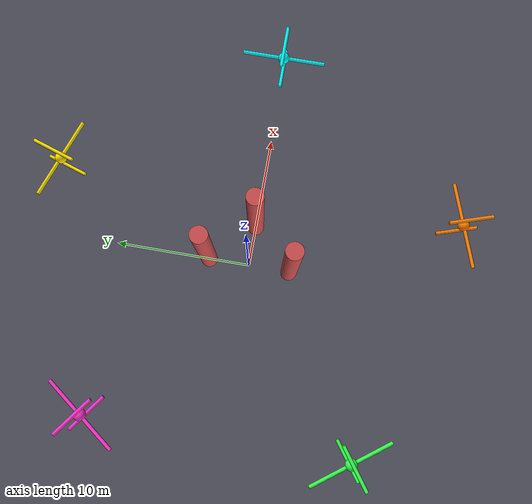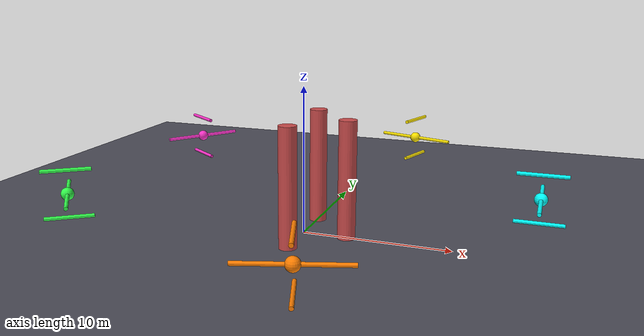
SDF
<sdf version="1.8">
 <world name="stress_swarm_orca_crossing">
  <physics name="1ms" type="ignored">
   <max_step_size>0.002</max_step_size>
   <real_time_factor>1.0</real_time_factor>
  </physics>
  <plugin filename="gz-sim-physics-system" name="gz::sim::systems::Physics"/>
  <plugin filename="gz-sim-scene-broadcaster-system" name="gz::sim::systems::SceneBroadcaster"/>
  <plugin filename="gz-sim-user-commands-system" name="gz::sim::systems::UserCommands"/>
  <plugin filename="gz-sim-sensors-system" name="gz::sim::systems::Sensors">
   <render_engine>ogre2</render_engine>
  </plugin>
  <plugin filename="gz-sim-imu-system" name="gz::sim::systems::Imu"/>
  <light type="directional" name="sun">
   <pose>0 0 100 0 0 0</pose>
   <diffuse>0.9 0.9 0.9 1</diffuse>
   <specular>0.3 0.3 0.3 1</specular>
   <direction>-0.5 0.1 -0.9</direction>
  </light>
  <model name="ground_plane">
   <static>true</static>
   <link name="link">
    <collision name="collision">
     <geometry><plane><normal>0 0 1</normal><size>200 200</size></plane></geometry>
    </collision>
    <visual name="visual">
     <geometry><plane><normal>0 0 1</normal><size>200 200</size></plane></geometry>
     <material><ambient>0.2 0.2 0.25 1</ambient><diffuse>0.3 0.3 0.35 1</diffuse></material>
    </visual>
   </link>
  </model>
  <model name="obstacle_pillar_1">
   <static>true</static>
   <pose>0.0 3.0 4.0 0 0 0</pose>
   <link name="link">
    <collision name="collision">
     <geometry><cylinder><radius>0.6</radius><length>8.0</length></cylinder></geometry>
    </collision>
    <visual name="visual">
     <geometry><cylinder><radius>0.6</radius><length>8.0</length></cylinder></geometry>
     <material>
      <ambient>0.7 0.2 0.2 1</ambient>
      <diffuse>0.8 0.3 0.3 1</diffuse>
      <specular>0.5 0.5 0.5 1</specular>
     </material>
    </visual>
   </link>
  </model>
  <model name="obstacle_pillar_2">
   <static>true</static>
   <pose>0.0 -3.0 4.0 0 0 0</pose>
   <link name="link">
    <collision name="collision">
     <geometry><cylinder><radius>0.6</radius><length>8.0</length></cylinder></geometry>
    </collision>
    <visual name="visual">
     <geometry><cylinder><radius>0.6</radius><length>8.0</length></cylinder></geometry>
     <material>
      <ambient>0.7 0.2 0.2 1</ambient>
      <diffuse>0.8 0.3 0.3 1</diffuse>
      <specular>0.5 0.5 0.5 1</specular>
     </material>
    </visual>
   </link>
  </model>
  <model name="obstacle_pillar_3">
   <static>true</static>
   <pose>3.0 0.0 4.0 0 0 0</pose>
   <link name="link">
    <collision name="collision">
     <geometry><cylinder><radius>0.6</radius><length>8.0</length></cylinder></geometry>
    </collision>
    <visual name="visual">
     <geometry><cylinder><radius>0.6</radius><length>8.0</length></cylinder></geometry>
     <material>
      <ambient>0.7 0.2 0.2 1</ambient>
      <diffuse>0.8 0.3 0.3 1</diffuse>
      <specular>0.5 0.5 0.5 1</specular>
     </material>
    </visual>
   </link>
  </model>
  <model name="ring_alpha">
   <static>true</static>
   <pose>15.0 0.0 4.0 0 0 3.14159</pose>
   <link name="link">
    <gravity>false</gravity>
    <visual name="center_beacon">
     <geometry><sphere><radius>0.4</radius></sphere></geometry>
     <material>
      <ambient>0.0 1.0 1.0 1</ambient>
      <diffuse>0.0 1.0 1.0 1</diffuse>
      <emissive>0.0 1.0 1.0 1</emissive>
     </material>
    </visual>
    <visual name="ring_top">
     <pose>0 0 1.5 0 1.5708 0</pose>
     <geometry><cylinder><radius>0.12</radius><length>3.0</length></cylinder></geometry>
     <material>
      <ambient>0.0 1.0 1.0 1</ambient>
      <diffuse>0.0 1.0 1.0 1</diffuse>
      <emissive>0.0 1.0 1.0 1</emissive>
     </material>
    </visual>
    <visual name="ring_bottom">
     <pose>0 0 -1.5 0 1.5708 0</pose>
     <geometry><cylinder><radius>0.12</radius><length>3.0</length></cylinder></geometry>
     <material>
      <ambient>0.0 1.0 1.0 1</ambient>
      <diffuse>0.0 1.0 1.0 1</diffuse>
      <emissive>0.0 1.0 1.0 1</emissive>
     </material>
    </visual>
    <visual name="ring_left">
     <pose>0 1.5 0 1.5708 0 0</pose>
     <geometry><cylinder><radius>0.12</radius><length>3.0</length></cylinder></geometry>
     <material>
      <ambient>0.0 1.0 1.0 1</ambient>
      <diffuse>0.0 1.0 1.0 1</diffuse>
      <emissive>0.0 1.0 1.0 1</emissive>
     </material>
    </visual>
    <visual name="ring_right">
     <pose>0 -1.5 0 1.5708 0 0</pose>
     <geometry><cylinder><radius>0.12</radius><length>3.0</length></cylinder></geometry>
     <material>
      <ambient>0.0 1.0 1.0 1</ambient>
      <diffuse>0.0 1.0 1.0 1</diffuse>
      <emissive>0.0 1.0 1.0 1</emissive>
     </material>
    </visual>
   </link>
  </model>
  <model name="ring_beta">
   <static>true</static>
   <pose>4.635 14.265 4.0 0 0 -1.88496</pose>
   <link name="link">
    <gravity>false</gravity>
    <visual name="center_beacon">
     <geometry><sphere><radius>0.4</radius></sphere></geometry>
     <material>
      <ambient>1.0 0.9 0.0 1</ambient>
      <diffuse>1.0 0.9 0.0 1</diffuse>
      <emissive>1.0 0.9 0.0 1</emissive>
     </material>
    </visual>
    <visual name="ring_top">
     <pose>0 0 1.5 0 1.5708 0</pose>
     <geometry><cylinder><radius>0.12</radius><length>3.0</length></cylinder></geometry>
     <material>
      <ambient>1.0 0.9 0.0 1</ambient>
      <diffuse>1.0 0.9 0.0 1</diffuse>
      <emissive>1.0 0.9 0.0 1</emissive>
     </material>
    </visual>
    <visual name="ring_bottom">
     <pose>0 0 -1.5 0 1.5708 0</pose>
     <geometry><cylinder><radius>0.12</radius><length>3.0</length></cylinder></geometry>
     <material>
      <ambient>1.0 0.9 0.0 1</ambient>
      <diffuse>1.0 0.9 0.0 1</diffuse>
      <emissive>1.0 0.9 0.0 1</emissive>
     </material>
    </visual>
    <visual name="ring_left">
     <pose>0 1.5 0 1.5708 0 0</pose>
     <geometry><cylinder><radius>0.12</radius><length>3.0</length></cylinder></geometry>
     <material>
      <ambient>1.0 0.9 0.0 1</ambient>
      <diffuse>1.0 0.9 0.0 1</diffuse>
      <emissive>1.0 0.9 0.0 1</emissive>
     </material>
    </visual>
    <visual name="ring_right">
     <pose>0 -1.5 0 1.5708 0 0</pose>
     <geometry><cylinder><radius>0.12</radius><length>3.0</length></cylinder></geometry>
     <material>
      <ambient>1.0 0.9 0.0 1</ambient>
      <diffuse>1.0 0.9 0.0 1</diffuse>
      <emissive>1.0 0.9 0.0 1</emissive>
     </material>
    </visual>
   </link>
  </model>
  <model name="ring_gamma">
   <static>true</static>
   <pose>-12.135 8.816 4.0 0 0 -0.62832</pose>
   <link name="link">
    <gravity>false</gravity>
    <visual name="center_beacon">
     <geometry><sphere><radius>0.4</radius></sphere></geometry>
     <material>
      <ambient>1.0 0.2 0.8 1</ambient>
      <diffuse>1.0 0.2 0.8 1</diffuse>
      <emissive>1.0 0.2 0.8 1</emissive>
     </material>
    </visual>
    <visual name="ring_top">
     <pose>0 0 1.5 0 1.5708 0</pose>
     <geometry><cylinder><radius>0.12</radius><length>3.0</length></cylinder></geometry>
     <material>
      <ambient>1.0 0.2 0.8 1</ambient>
      <diffuse>1.0 0.2 0.8 1</diffuse>
      <emissive>1.0 0.2 0.8 1</emissive>
     </material>
    </visual>
    <visual name="ring_bottom">
     <pose>0 0 -1.5 0 1.5708 0</pose>
     <geometry><cylinder><radius>0.12</radius><length>3.0</length></cylinder></geometry>
     <material>
      <ambient>1.0 0.2 0.8 1</ambient>
      <diffuse>1.0 0.2 0.8 1</diffuse>
      <emissive>1.0 0.2 0.8 1</emissive>
     </material>
    </visual>
    <visual name="ring_left">
     <pose>0 1.5 0 1.5708 0 0</pose>
     <geometry><cylinder><radius>0.12</radius><length>3.0</length></cylinder></geometry>
     <material>
      <ambient>1.0 0.2 0.8 1</ambient>
      <diffuse>1.0 0.2 0.8 1</diffuse>
      <emissive>1.0 0.2 0.8 1</emissive>
     </material>
    </visual>
    <visual name="ring_right">
     <pose>0 -1.5 0 1.5708 0 0</pose>
     <geometry><cylinder><radius>0.12</radius><length>3.0</length></cylinder></geometry>
     <material>
      <ambient>1.0 0.2 0.8 1</ambient>
      <diffuse>1.0 0.2 0.8 1</diffuse>
      <emissive>1.0 0.2 0.8 1</emissive>
     </material>
    </visual>
   </link>
  </model>
  <model name="ring_delta">
   <static>true</static>
   <pose>-12.135 -8.816 4.0 0 0 0.62832</pose>
   <link name="link">
    <gravity>false</gravity>
    <visual name="center_beacon">
     <geometry><sphere><radius>0.4</radius></sphere></geometry>
     <material>
      <ambient>0.2 1.0 0.3 1</ambient>
      <diffuse>0.2 1.0 0.3 1</diffuse>
      <emissive>0.2 1.0 0.3 1</emissive>
     </material>
    </visual>
    <visual name="ring_top">
     <pose>0 0 1.5 0 1.5708 0</pose>
     <geometry><cylinder><radius>0.12</radius><length>3.0</length></cylinder></geometry>
     <material>
      <ambient>0.2 1.0 0.3 1</ambient>
      <diffuse>0.2 1.0 0.3 1</diffuse>
      <emissive>0.2 1.0 0.3 1</emissive>
     </material>
    </visual>
    <visual name="ring_bottom">
     <pose>0 0 -1.5 0 1.5708 0</pose>
     <geometry><cylinder><radius>0.12</radius><length>3.0</length></cylinder></geometry>
     <material>
      <ambient>0.2 1.0 0.3 1</ambient>
      <diffuse>0.2 1.0 0.3 1</diffuse>
      <emissive>0.2 1.0 0.3 1</emissive>
     </material>
    </visual>
    <visual name="ring_left">
     <pose>0 1.5 0 1.5708 0 0</pose>
     <geometry><cylinder><radius>0.12</radius><length>3.0</length></cylinder></geometry>
     <material>
      <ambient>0.2 1.0 0.3 1</ambient>
      <diffuse>0.2 1.0 0.3 1</diffuse>
      <emissive>0.2 1.0 0.3 1</emissive>
     </material>
    </visual>
    <visual name="ring_right">
     <pose>0 -1.5 0 1.5708 0 0</pose>
     <geometry><cylinder><radius>0.12</radius><length>3.0</length></cylinder></geometry>
     <material>
      <ambient>0.2 1.0 0.3 1</ambient>
      <diffuse>0.2 1.0 0.3 1</diffuse>
      <emissive>0.2 1.0 0.3 1</emissive>
     </material>
    </visual>
   </link>
  </model>
  <model name="ring_epsilon">
   <static>true</static>
   <pose>4.635 -14.265 4.0 0 0 1.88496</pose>
   <link name="link">
    <gravity>false</gravity>
    <visual name="center_beacon">
     <geometry><sphere><radius>0.4</radius></sphere></geometry>
     <material>
      <ambient>1.0 0.5 0.0 1</ambient>
      <diffuse>1.0 0.5 0.0 1</diffuse>
      <emissive>1.0 0.5 0.0 1</emissive>
     </material>
    </visual>
    <visual name="ring_top">
     <pose>0 0 1.5 0 1.5708 0</pose>
     <geometry><cylinder><radius>0.12</radius><length>3.0</length></cylinder></geometry>
     <material>
      <ambient>1.0 0.5 0.0 1</ambient>
      <diffuse>1.0 0.5 0.0 1</diffuse>
      <emissive>1.0 0.5 0.0 1</emissive>
     </material>
    </visual>
    <visual name="ring_bottom">
     <pose>0 0 -1.5 0 1.5708 0</pose>
     <geometry><cylinder><radius>0.12</radius><length>3.0</length></cylinder></geometry>
     <material>
      <ambient>1.0 0.5 0.0 1</ambient>
      <diffuse>1.0 0.5 0.0 1</diffuse>
      <emissive>1.0 0.5 0.0 1</emissive>
     </material>
    </visual>
    <visual name="ring_left">
     <pose>0 1.5 0 1.5708 0 0</pose>
     <geometry><cylinder><radius>0.12</radius><length>3.0</length></cylinder></geometry>
     <material>
      <ambient>1.0 0.5 0.0 1</ambient>
      <diffuse>1.0 0.5 0.0 1</diffuse>
      <emissive>1.0 0.5 0.0 1</emissive>
     </material>
    </visual>
    <visual name="ring_right">
     <pose>0 -1.5 0 1.5708 0 0</pose>
     <geometry><cylinder><radius>0.12</radius><length>3.0</length></cylinder></geometry>
     <material>
      <ambient>1.0 0.5 0.0 1</ambient>
      <diffuse>1.0 0.5 0.0 1</diffuse>
      <emissive>1.0 0.5 0.0 1</emissive>
     </material>
    </visual>
   </link>
  </model>
 </world>
</sdf>
